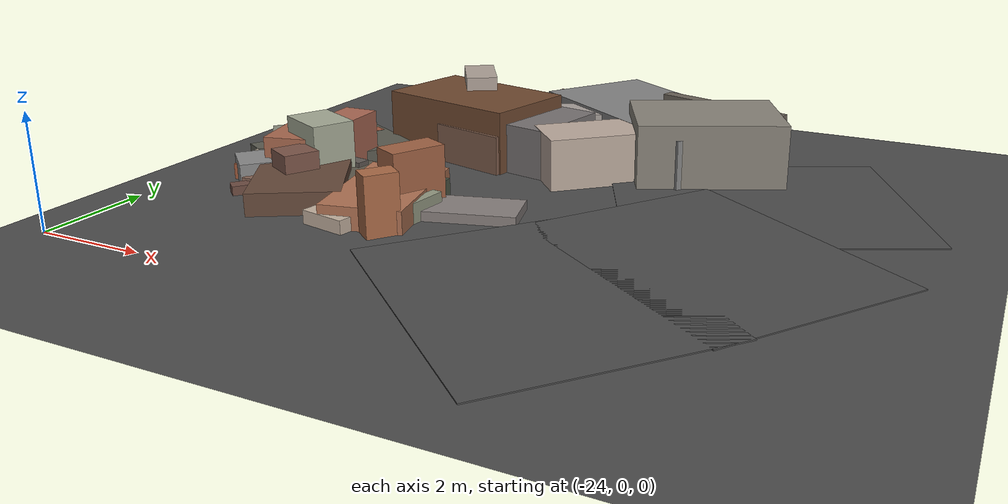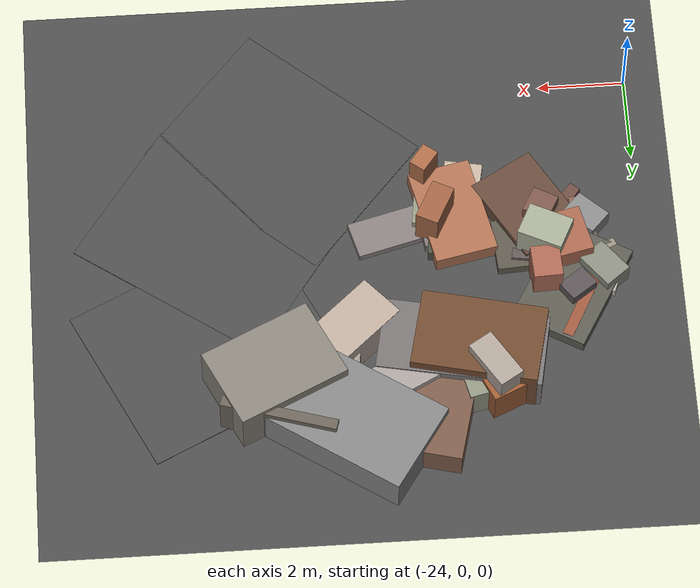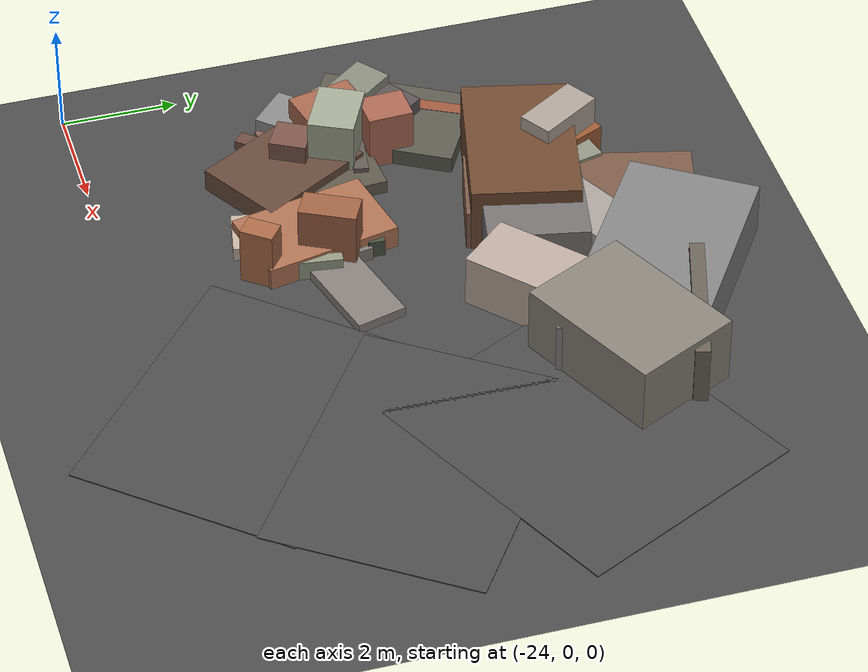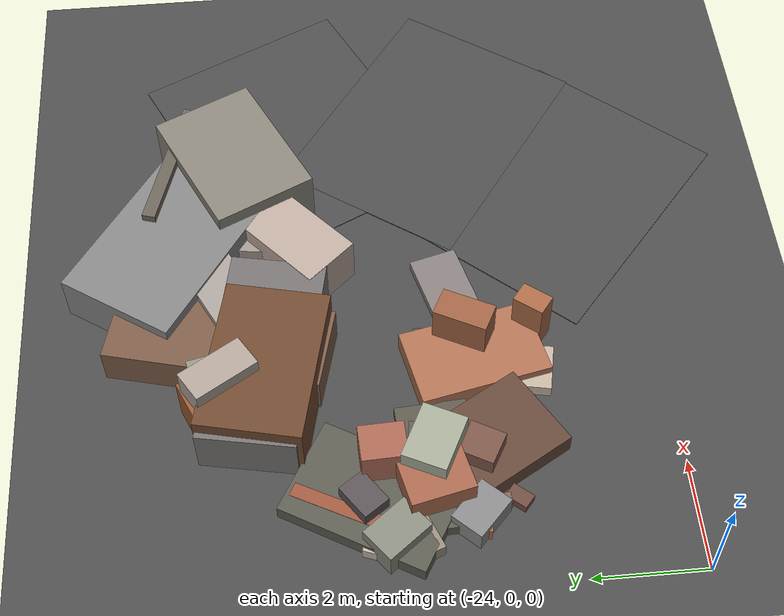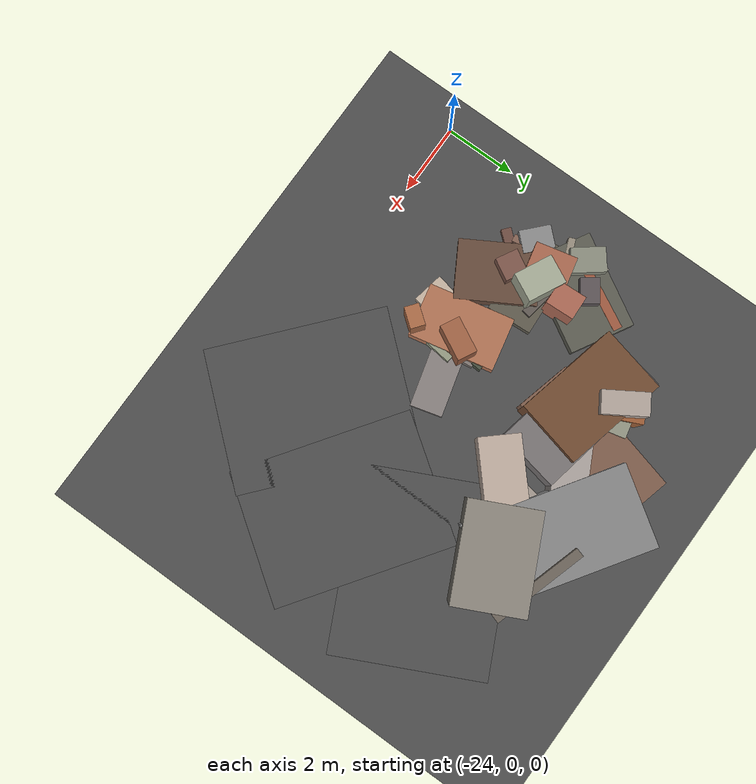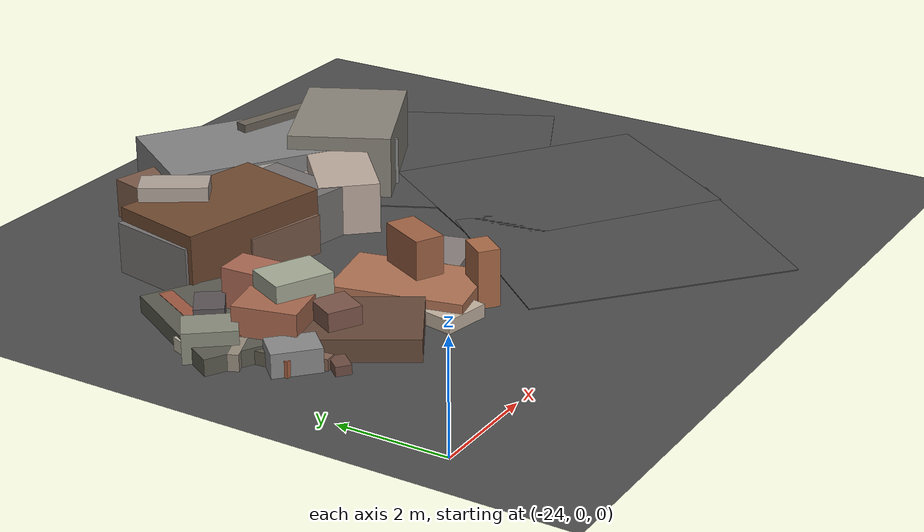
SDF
<sdf version="1.6">
 <world name="navitas_arena">
  <model name="ground_plane">
   <static>true</static>
   <link name="link">
    <collision name="collision">
     <geometry><plane><normal>0 0 1</normal><size>400 400</size></plane></geometry>
     <surface><friction><ode><mu>0.800</mu><mu2>0.800</mu2></ode></friction></surface>
    </collision>
    <visual name="visual">
     <cast_shadows>false</cast_shadows>
     <geometry><plane><normal>0 0 1</normal><size>400 400</size></plane></geometry>
     <material>
      <specular>0.04 0.04 0.04 1</specular>
      <script>
       <uri>file://media/materials/scripts/navitas_asphalt.material</uri>
       <name>Navitas/RealArenaAsphalt</name>
      </script>
     </material>
    </visual>
   </link>
  </model>
  <model name="road_orta_1_11">
   <static>true</static>
   <pose>-15.885 1.333 0.040 0 0 0.863</pose>
   <link name="link">
    <collision name="col"><geometry><box><size>3.971 5.000 0.020</size></box></geometry></collision>
    <visual name="vis">
     <geometry><box><size>3.971 5.000 0.020</size></box></geometry>
     <material>
      <specular>0.04 0.04 0.04 1</specular>
      <script>
       <uri>file://media/materials/scripts/navitas_asphalt.material</uri>
       <name>Navitas/RealArenaAsphalt</name>
      </script>
     </material>
    </visual>
   </link>
  </model>
  <model name="road_orta_1_12">
   <static>true</static>
   <pose>-14.071 3.667 0.040 0 0 0.961</pose>
   <link name="link">
    <collision name="col"><geometry><box><size>3.747 5.000 0.020</size></box></geometry></collision>
    <visual name="vis">
     <geometry><box><size>3.747 5.000 0.020</size></box></geometry>
     <material>
      <specular>0.04 0.04 0.04 1</specular>
      <script>
       <uri>file://media/materials/scripts/navitas_asphalt.material</uri>
       <name>Navitas/RealArenaAsphalt</name>
      </script>
     </material>
    </visual>
   </link>
  </model>
  <model name="road_orta_1_13">
   <static>true</static>
   <pose>-13.981 6.321 0.040 0 0 2.025</pose>
   <link name="link">
    <collision name="col"><geometry><box><size>4.211 5.000 0.020</size></box></geometry></collision>
    <visual name="vis">
     <geometry><box><size>4.211 5.000 0.020</size></box></geometry>
     <material>
      <specular>0.04 0.04 0.04 1</specular>
      <script>
       <uri>file://media/materials/scripts/navitas_asphalt.material</uri>
       <name>Navitas/RealArenaAsphalt</name>
      </script>
     </material>
    </visual>
   </link>
  </model>
  <model name="blk_orta_1_1_3">
   <static>true</static>
   <pose>-16.607 8.062 0.000 0 0 0</pose>
   <link name="link">
    <collision name="col_0">
     <pose>1.172 0.656 0.552 0.000 0.000 2.850</pose>
     <geometry><box><size>2.671 0.250 1.104</size></box></geometry>
    </collision>
    <visual name="vis_0">
     <pose>1.172 0.656 0.552 0.000 0.000 2.850</pose>
     <geometry><box><size>2.671 0.250 1.104</size></box></geometry>
     <material>
      <ambient>0.39 0.36 0.33 1</ambient>
      <diffuse>0.42 0.39 0.35 1</diffuse>
      <specular>0.05 0.05 0.045 1</specular>
     </material>
    </visual>
    <collision name="col_1">
     <pose>-0.138 0.423 0.475 0.000 0.000 2.554</pose>
     <geometry><box><size>4.443 2.253 0.949</size></box></geometry>
    </collision>
    <visual name="vis_1">
     <pose>-0.138 0.423 0.475 0.000 0.000 2.554</pose>
     <geometry><box><size>4.443 2.253 0.949</size></box></geometry>
     <material>
      <ambient>0.48 0.49 0.48 1</ambient>
      <diffuse>0.52 0.52 0.52 1</diffuse>
      <specular>0.05 0.05 0.045 1</specular>
     </material>
    </visual>
    <collision name="col_2">
     <pose>-0.430 0.009 0.312 0.000 0.000 1.437</pose>
     <geometry><box><size>2.510 0.363 0.624</size></box></geometry>
    </collision>
    <visual name="vis_2">
     <pose>-0.430 0.009 0.312 0.000 0.000 1.437</pose>
     <geometry><box><size>2.510 0.363 0.624</size></box></geometry>
     <material>
      <ambient>0.58 0.55 0.51 1</ambient>
      <diffuse>0.63 0.59 0.55 1</diffuse>
      <specular>0.05 0.05 0.045 1</specular>
     </material>
    </visual>
    <collision name="col_3">
     <pose>-1.234 -0.040 0.448 0.000 0.000 0.478</pose>
     <geometry><box><size>3.831 0.915 0.897</size></box></geometry>
    </collision>
    <visual name="vis_3">
     <pose>-1.234 -0.040 0.448 0.000 0.000 0.478</pose>
     <geometry><box><size>3.831 0.915 0.897</size></box></geometry>
     <material>
      <ambient>0.62 0.58 0.57 1</ambient>
      <diffuse>0.66 0.63 0.61 1</diffuse>
      <specular>0.05 0.05 0.045 1</specular>
     </material>
    </visual>
    <collision name="col_4">
     <pose>-0.088 -1.145 0.473 0.000 0.000 0.731</pose>
     <geometry><box><size>3.311 1.118 0.946</size></box></geometry>
    </collision>
    <visual name="vis_4">
     <pose>-0.088 -1.145 0.473 0.000 0.000 0.731</pose>
     <geometry><box><size>3.311 1.118 0.946</size></box></geometry>
     <material>
      <ambient>0.69 0.62 0.57 1</ambient>
      <diffuse>0.74 0.67 0.62 1</diffuse>
      <specular>0.05 0.05 0.045 1</specular>
     </material>
    </visual>
    <collision name="col_5">
     <pose>1.211 -0.546 0.608 0.000 0.000 0.451</pose>
     <geometry><box><size>2.683 1.945 1.215</size></box></geometry>
    </collision>
    <visual name="vis_5">
     <pose>1.211 -0.546 0.608 0.000 0.000 0.451</pose>
     <geometry><box><size>2.683 1.945 1.215</size></box></geometry>
     <material>
      <ambient>0.50 0.48 0.44 1</ambient>
      <diffuse>0.54 0.52 0.48 1</diffuse>
      <specular>0.05 0.05 0.045 1</specular>
     </material>
    </visual>
   </link>
  </model>
  <model name="blk_orta_1_1_4">
   <static>true</static>
   <pose>-19.697 7.496 0.000 0 0 0</pose>
   <link name="link">
    <collision name="col_0">
     <pose>-0.177 0.539 0.396 0.000 0.000 1.803</pose>
     <geometry><box><size>0.762 0.466 0.793</size></box></geometry>
    </collision>
    <visual name="vis_0">
     <pose>-0.177 0.539 0.396 0.000 0.000 1.803</pose>
     <geometry><box><size>0.762 0.466 0.793</size></box></geometry>
     <material>
      <ambient>0.53 0.53 0.47 1</ambient>
      <diffuse>0.57 0.58 0.51 1</diffuse>
      <specular>0.05 0.05 0.045 1</specular>
     </material>
    </visual>
    <collision name="col_1">
     <pose>-0.957 0.230 0.468 0.000 0.000 0.219</pose>
     <geometry><box><size>0.528 0.535 0.935</size></box></geometry>
    </collision>
    <visual name="vis_1">
     <pose>-0.957 0.230 0.468 0.000 0.000 0.219</pose>
     <geometry><box><size>0.528 0.535 0.935</size></box></geometry>
     <material>
      <ambient>0.35 0.31 0.30 1</ambient>
      <diffuse>0.38 0.33 0.33 1</diffuse>
      <specular>0.05 0.05 0.045 1</specular>
     </material>
    </visual>
    <collision name="col_2">
     <pose>1.021 -0.043 0.358 0.000 0.000 0.556</pose>
     <geometry><box><size>1.240 0.692 0.716</size></box></geometry>
    </collision>
    <visual name="vis_2">
     <pose>1.021 -0.043 0.358 0.000 0.000 0.556</pose>
     <geometry><box><size>1.240 0.692 0.716</size></box></geometry>
     <material>
      <ambient>0.60 0.34 0.26 1</ambient>
      <diffuse>0.65 0.37 0.28 1</diffuse>
      <specular>0.05 0.05 0.045 1</specular>
     </material>
    </visual>
    <collision name="col_3">
     <pose>0.541 0.379 0.368 0.000 0.000 1.324</pose>
     <geometry><box><size>3.881 1.540 0.735</size></box></geometry>
    </collision>
    <visual name="vis_3">
     <pose>0.541 0.379 0.368 0.000 0.000 1.324</pose>
     <geometry><box><size>3.881 1.540 0.735</size></box></geometry>
     <material>
      <ambient>0.46 0.34 0.27 1</ambient>
      <diffuse>0.49 0.36 0.29 1</diffuse>
      <specular>0.05 0.05 0.045 1</specular>
     </material>
    </visual>
    <collision name="col_4">
     <pose>-0.720 0.312 0.460 0.000 0.000 1.998</pose>
     <geometry><box><size>1.347 0.936 0.919</size></box></geometry>
    </collision>
    <visual name="vis_4">
     <pose>-0.720 0.312 0.460 0.000 0.000 1.998</pose>
     <geometry><box><size>1.347 0.936 0.919</size></box></geometry>
     <material>
      <ambient>0.57 0.33 0.20 1</ambient>
      <diffuse>0.61 0.36 0.21 1</diffuse>
      <specular>0.05 0.05 0.045 1</specular>
     </material>
    </visual>
    <collision name="col_5">
     <pose>-0.637 0.354 0.724 0.000 0.000 2.132</pose>
     <geometry><box><size>1.222 0.611 1.448</size></box></geometry>
    </collision>
    <visual name="vis_5">
     <pose>-0.637 0.354 0.724 0.000 0.000 2.132</pose>
     <geometry><box><size>1.222 0.611 1.448</size></box></geometry>
     <material>
      <ambient>0.64 0.59 0.55 1</ambient>
      <diffuse>0.69 0.64 0.60 1</diffuse>
      <specular>0.05 0.05 0.045 1</specular>
     </material>
    </visual>
    <collision name="col_6">
     <pose>0.677 0.108 0.330 0.000 0.000 -0.182</pose>
     <geometry><box><size>0.630 0.480 0.661</size></box></geometry>
    </collision>
    <visual name="vis_6">
     <pose>0.677 0.108 0.330 0.000 0.000 -0.182</pose>
     <geometry><box><size>0.630 0.480 0.661</size></box></geometry>
     <material>
      <ambient>0.56 0.55 0.51 1</ambient>
      <diffuse>0.60 0.60 0.55 1</diffuse>
      <specular>0.05 0.05 0.045 1</specular>
     </material>
    </visual>
    <collision name="col_7">
     <pose>0.037 -0.384 0.468 0.000 0.000 -0.193</pose>
     <geometry><box><size>3.755 1.735 0.936</size></box></geometry>
    </collision>
    <visual name="vis_7">
     <pose>0.037 -0.384 0.468 0.000 0.000 -0.193</pose>
     <geometry><box><size>3.755 1.735 0.936</size></box></geometry>
     <material>
      <ambient>0.43 0.42 0.41 1</ambient>
      <diffuse>0.47 0.45 0.45 1</diffuse>
      <specular>0.05 0.05 0.045 1</specular>
     </material>
    </visual>
    <collision name="col_8">
     <pose>-0.333 -0.396 0.594 0.000 0.000 -0.225</pose>
     <geometry><box><size>2.877 1.860 1.189</size></box></geometry>
    </collision>
    <visual name="vis_8">
     <pose>-0.333 -0.396 0.594 0.000 0.000 -0.225</pose>
     <geometry><box><size>2.877 1.860 1.189</size></box></geometry>
     <material>
      <ambient>0.40 0.27 0.18 1</ambient>
      <diffuse>0.44 0.29 0.19 1</diffuse>
      <specular>0.05 0.05 0.045 1</specular>
     </material>
    </visual>
   </link>
  </model>
  <model name="deb_orta_26">
   <static>true</static>
   <pose>-19.552 3.379 0.000 0 0 0</pose>
   <link name="link">
    <collision name="col_0">
     <pose>-0.171 -0.294 0.160 0.000 0.000 2.521</pose>
     <geometry><box><size>0.510 0.457 0.320</size></box></geometry>
    </collision>
    <visual name="vis_0">
     <pose>-0.171 -0.294 0.160 0.000 0.000 2.521</pose>
     <geometry><box><size>0.510 0.457 0.320</size></box></geometry>
     <material>
      <ambient>0.48 0.36 0.25 1</ambient>
      <diffuse>0.52 0.39 0.28 1</diffuse>
      <specular>0.05 0.05 0.045 1</specular>
     </material>
    </visual>
    <collision name="col_1">
     <pose>0.264 0.184 0.559 0.000 0.000 2.671</pose>
     <geometry><box><size>0.539 0.990 1.118</size></box></geometry>
    </collision>
    <visual name="vis_1">
     <pose>0.264 0.184 0.559 0.000 0.000 2.671</pose>
     <geometry><box><size>0.539 0.990 1.118</size></box></geometry>
     <material>
      <ambient>0.59 0.36 0.25 1</ambient>
      <diffuse>0.63 0.39 0.27 1</diffuse>
      <specular>0.05 0.05 0.045 1</specular>
     </material>
    </visual>
    <collision name="col_2">
     <pose>0.748 0.171 0.088 0.000 0.000 3.406</pose>
     <geometry><box><size>2.915 0.887 0.176</size></box></geometry>
    </collision>
    <visual name="vis_2">
     <pose>0.748 0.171 0.088 0.000 0.000 3.406</pose>
     <geometry><box><size>2.915 0.887 0.176</size></box></geometry>
     <material>
      <ambient>0.49 0.46 0.46 1</ambient>
      <diffuse>0.53 0.50 0.49 1</diffuse>
      <specular>0.05 0.05 0.045 1</specular>
     </material>
    </visual>
    <collision name="col_3">
     <pose>-0.159 0.024 0.204 0.000 0.000 1.784</pose>
     <geometry><box><size>2.384 1.461 0.408</size></box></geometry>
    </collision>
    <visual name="vis_3">
     <pose>-0.159 0.024 0.204 0.000 0.000 1.784</pose>
     <geometry><box><size>2.384 1.461 0.408</size></box></geometry>
     <material>
      <ambient>0.64 0.42 0.30 1</ambient>
      <diffuse>0.69 0.45 0.33 1</diffuse>
      <specular>0.05 0.05 0.045 1</specular>
     </material>
    </visual>
    <collision name="col_4">
     <pose>0.355 0.574 0.120 0.000 0.000 1.708</pose>
     <geometry><box><size>0.504 0.396 0.240</size></box></geometry>
    </collision>
    <visual name="vis_4">
     <pose>0.355 0.574 0.120 0.000 0.000 1.708</pose>
     <geometry><box><size>0.504 0.396 0.240</size></box></geometry>
     <material>
      <ambient>0.46 0.43 0.41 1</ambient>
      <diffuse>0.50 0.47 0.45 1</diffuse>
      <specular>0.05 0.05 0.045 1</specular>
     </material>
    </visual>
    <collision name="col_5">
     <pose>-0.327 0.658 0.110 0.000 0.000 2.406</pose>
     <geometry><box><size>0.272 0.455 0.220</size></box></geometry>
    </collision>
    <visual name="vis_5">
     <pose>-0.327 0.658 0.110 0.000 0.000 2.406</pose>
     <geometry><box><size>0.272 0.455 0.220</size></box></geometry>
     <material>
      <ambient>0.49 0.47 0.44 1</ambient>
      <diffuse>0.53 0.51 0.48 1</diffuse>
      <specular>0.05 0.05 0.045 1</specular>
     </material>
    </visual>
    <collision name="col_6">
     <pose>0.338 0.938 0.156 0.000 0.000 3.084</pose>
     <geometry><box><size>0.255 0.285 0.312</size></box></geometry>
    </collision>
    <visual name="vis_6">
     <pose>0.338 0.938 0.156 0.000 0.000 3.084</pose>
     <geometry><box><size>0.255 0.285 0.312</size></box></geometry>
     <material>
      <ambient>0.27 0.30 0.24 1</ambient>
      <diffuse>0.29 0.32 0.26 1</diffuse>
      <specular>0.05 0.05 0.045 1</specular>
     </material>
    </visual>
   </link>
  </model>
  <model name="deb_orta_87">
   <static>true</static>
   <pose>-22.765 5.282 0.000 0 0 0</pose>
   <link name="link">
    <collision name="col_0">
     <pose>0.083 -0.605 0.148 0.000 0.000 0.393</pose>
     <geometry><box><size>1.527 0.190 0.297</size></box></geometry>
    </collision>
    <visual name="vis_0">
     <pose>0.083 -0.605 0.148 0.000 0.000 0.393</pose>
     <geometry><box><size>1.527 0.190 0.297</size></box></geometry>
     <material>
      <ambient>0.54 0.51 0.46 1</ambient>
      <diffuse>0.59 0.55 0.49 1</diffuse>
      <specular>0.05 0.05 0.045 1</specular>
     </material>
    </visual>
    <collision name="col_1">
     <pose>0.450 0.118 0.148 0.000 0.000 1.052</pose>
     <geometry><box><size>2.708 1.799 0.297</size></box></geometry>
    </collision>
    <visual name="vis_1">
     <pose>0.450 0.118 0.148 0.000 0.000 1.052</pose>
     <geometry><box><size>2.708 1.799 0.297</size></box></geometry>
     <material>
      <ambient>0.33 0.33 0.30 1</ambient>
      <diffuse>0.36 0.36 0.32 1</diffuse>
      <specular>0.05 0.05 0.045 1</specular>
     </material>
    </visual>
    <collision name="col_2">
     <pose>0.350 0.284 0.283 0.000 0.000 0.619</pose>
     <geometry><box><size>0.695 0.516 0.565</size></box></geometry>
    </collision>
    <visual name="vis_2">
     <pose>0.350 0.284 0.283 0.000 0.000 0.619</pose>
     <geometry><box><size>0.695 0.516 0.565</size></box></geometry>
     <material>
      <ambient>0.34 0.30 0.31 1</ambient>
      <diffuse>0.36 0.33 0.34 1</diffuse>
      <specular>0.05 0.05 0.045 1</specular>
     </material>
    </visual>
    <collision name="col_3">
     <pose>0.185 0.518 0.151 0.000 0.000 1.090</pose>
     <geometry><box><size>2.133 0.249 0.303</size></box></geometry>
    </collision>
    <visual name="vis_3">
     <pose>0.185 0.518 0.151 0.000 0.000 1.090</pose>
     <geometry><box><size>2.133 0.249 0.303</size></box></geometry>
     <material>
      <ambient>0.58 0.32 0.23 1</ambient>
      <diffuse>0.62 0.35 0.25 1</diffuse>
      <specular>0.05 0.05 0.045 1</specular>
     </material>
    </visual>
    <collision name="col_4">
     <pose>-0.487 0.173 0.116 0.000 0.000 -0.356</pose>
     <geometry><box><size>0.184 0.373 0.233</size></box></geometry>
    </collision>
    <visual name="vis_4">
     <pose>-0.487 0.173 0.116 0.000 0.000 -0.356</pose>
     <geometry><box><size>0.184 0.373 0.233</size></box></geometry>
     <material>
      <ambient>0.70 0.66 0.61 1</ambient>
      <diffuse>0.75 0.72 0.66 1</diffuse>
      <specular>0.05 0.05 0.045 1</specular>
     </material>
    </visual>
    <collision name="col_5">
     <pose>-0.308 -0.213 0.273 0.000 0.000 0.665</pose>
     <geometry><box><size>0.678 0.928 0.546</size></box></geometry>
    </collision>
    <visual name="vis_5">
     <pose>-0.308 -0.213 0.273 0.000 0.000 0.665</pose>
     <geometry><box><size>0.678 0.928 0.546</size></box></geometry>
     <material>
      <ambient>0.50 0.51 0.46 1</ambient>
      <diffuse>0.54 0.55 0.49 1</diffuse>
      <specular>0.05 0.05 0.045 1</specular>
     </material>
    </visual>
   </link>
  </model>
  <model name="deb_orta_148">
   <static>true</static>
   <pose>-19.533 2.851 0.000 0 0 0</pose>
   <link name="link">
    <collision name="col_0">
     <pose>-0.392 -0.016 0.122 0.000 0.000 1.381</pose>
     <geometry><box><size>1.586 0.878 0.244</size></box></geometry>
    </collision>
    <visual name="vis_0">
     <pose>-0.392 -0.016 0.122 0.000 0.000 1.381</pose>
     <geometry><box><size>1.586 0.878 0.244</size></box></geometry>
     <material>
      <ambient>0.71 0.65 0.58 1</ambient>
      <diffuse>0.77 0.70 0.63 1</diffuse>
      <specular>0.05 0.05 0.045 1</specular>
     </material>
    </visual>
    <collision name="col_1">
     <pose>0.607 0.240 0.180 0.000 0.000 1.444</pose>
     <geometry><box><size>1.139 0.190 0.360</size></box></geometry>
    </collision>
    <visual name="vis_1">
     <pose>0.607 0.240 0.180 0.000 0.000 1.444</pose>
     <geometry><box><size>1.139 0.190 0.360</size></box></geometry>
     <material>
      <ambient>0.54 0.55 0.48 1</ambient>
      <diffuse>0.58 0.60 0.51 1</diffuse>
      <specular>0.05 0.05 0.045 1</specular>
     </material>
    </visual>
    <collision name="col_2">
     <pose>0.416 -0.528 0.526 0.000 0.000 0.918</pose>
     <geometry><box><size>0.584 0.398 1.052</size></box></geometry>
    </collision>
    <visual name="vis_2">
     <pose>0.416 -0.528 0.526 0.000 0.000 0.918</pose>
     <geometry><box><size>0.584 0.398 1.052</size></box></geometry>
     <material>
      <ambient>0.62 0.39 0.26 1</ambient>
      <diffuse>0.67 0.42 0.28 1</diffuse>
      <specular>0.05 0.05 0.045 1</specular>
     </material>
    </visual>
    <collision name="col_3">
     <pose>-0.067 0.275 0.081 0.000 0.000 0.196</pose>
     <geometry><box><size>0.475 0.450 0.162</size></box></geometry>
    </collision>
    <visual name="vis_3">
     <pose>-0.067 0.275 0.081 0.000 0.000 0.196</pose>
     <geometry><box><size>0.475 0.450 0.162</size></box></geometry>
     <material>
      <ambient>0.65 0.38 0.29 1</ambient>
      <diffuse>0.70 0.41 0.31 1</diffuse>
      <specular>0.05 0.05 0.045 1</specular>
     </material>
    </visual>
    <collision name="col_4">
     <pose>0.403 -0.251 0.145 0.000 0.000 0.025</pose>
     <geometry><box><size>0.366 0.320 0.289</size></box></geometry>
    </collision>
    <visual name="vis_4">
     <pose>0.403 -0.251 0.145 0.000 0.000 0.025</pose>
     <geometry><box><size>0.366 0.320 0.289</size></box></geometry>
     <material>
      <ambient>0.31 0.35 0.33 1</ambient>
      <diffuse>0.34 0.38 0.35 1</diffuse>
      <specular>0.05 0.05 0.045 1</specular>
     </material>
    </visual>
   </link>
  </model>
  <model name="deb_orta_200">
   <static>true</static>
   <pose>-21.501 3.669 0.000 0 0 0</pose>
   <link name="link">
    <collision name="col_0">
     <pose>0.049 -0.343 0.204 0.000 0.000 2.102</pose>
     <geometry><box><size>2.205 1.613 0.409</size></box></geometry>
    </collision>
    <visual name="vis_0">
     <pose>0.049 -0.343 0.204 0.000 0.000 2.102</pose>
     <geometry><box><size>2.205 1.613 0.409</size></box></geometry>
     <material>
      <ambient>0.37 0.27 0.21 1</ambient>
      <diffuse>0.40 0.29 0.23 1</diffuse>
      <specular>0.05 0.05 0.045 1</specular>
     </material>
    </visual>
    <collision name="col_1">
     <pose>0.254 -0.202 0.090 0.000 0.000 1.962</pose>
     <geometry><box><size>1.750 0.170 0.180</size></box></geometry>
    </collision>
    <visual name="vis_1">
     <pose>0.254 -0.202 0.090 0.000 0.000 1.962</pose>
     <geometry><box><size>1.750 0.170 0.180</size></box></geometry>
     <material>
      <ambient>0.59 0.33 0.22 1</ambient>
      <diffuse>0.63 0.36 0.24 1</diffuse>
      <specular>0.05 0.05 0.045 1</specular>
     </material>
    </visual>
    <collision name="col_2">
     <pose>-0.256 0.669 0.562 0.000 0.000 2.685</pose>
     <geometry><box><size>1.063 0.803 1.123</size></box></geometry>
    </collision>
    <visual name="vis_2">
     <pose>-0.256 0.669 0.562 0.000 0.000 2.685</pose>
     <geometry><box><size>1.063 0.803 1.123</size></box></geometry>
     <material>
      <ambient>0.60 0.62 0.54 1</ambient>
      <diffuse>0.65 0.67 0.59 1</diffuse>
      <specular>0.05 0.05 0.045 1</specular>
     </material>
    </visual>
    <collision name="col_3">
     <pose>-0.222 -0.139 0.371 0.000 0.000 1.068</pose>
     <geometry><box><size>0.645 0.620 0.742</size></box></geometry>
    </collision>
    <visual name="vis_3">
     <pose>-0.222 -0.139 0.371 0.000 0.000 1.068</pose>
     <geometry><box><size>0.645 0.620 0.742</size></box></geometry>
     <material>
      <ambient>0.46 0.31 0.27 1</ambient>
      <diffuse>0.49 0.34 0.29 1</diffuse>
      <specular>0.05 0.05 0.045 1</specular>
     </material>
    </visual>
    <collision name="col_4">
     <pose>-0.663 -0.161 0.146 0.000 0.000 3.052</pose>
     <geometry><box><size>1.967 0.181 0.292</size></box></geometry>
    </collision>
    <visual name="vis_4">
     <pose>-0.663 -0.161 0.146 0.000 0.000 3.052</pose>
     <geometry><box><size>1.967 0.181 0.292</size></box></geometry>
     <material>
      <ambient>0.64 0.37 0.25 1</ambient>
      <diffuse>0.69 0.40 0.27 1</diffuse>
      <specular>0.05 0.05 0.045 1</specular>
     </material>
    </visual>
   </link>
  </model>
  <model name="deb_orta_221">
   <static>true</static>
   <pose>-22.121 4.682 0.000 0 0 0</pose>
   <link name="link">
    <collision name="col_0">
     <pose>0.511 -0.023 0.166 0.000 0.000 -0.152</pose>
     <geometry><box><size>1.241 0.255 0.331</size></box></geometry>
    </collision>
    <visual name="vis_0">
     <pose>0.511 -0.023 0.166 0.000 0.000 -0.152</pose>
     <geometry><box><size>1.241 0.255 0.331</size></box></geometry>
     <material>
      <ambient>0.35 0.33 0.30 1</ambient>
      <diffuse>0.38 0.35 0.33 1</diffuse>
      <specular>0.05 0.05 0.045 1</specular>
     </material>
    </visual>
    <collision name="col_1">
     <pose>0.195 0.427 0.114 0.000 0.000 1.469</pose>
     <geometry><box><size>1.325 0.297 0.227</size></box></geometry>
    </collision>
    <visual name="vis_1">
     <pose>0.195 0.427 0.114 0.000 0.000 1.469</pose>
     <geometry><box><size>1.325 0.297 0.227</size></box></geometry>
     <material>
      <ambient>0.53 0.52 0.46 1</ambient>
      <diffuse>0.57 0.56 0.50 1</diffuse>
      <specular>0.05 0.05 0.045 1</specular>
     </material>
    </visual>
    <collision name="col_2">
     <pose>0.310 -0.466 0.122 0.000 0.000 0.065</pose>
     <geometry><box><size>2.397 1.270 0.244</size></box></geometry>
    </collision>
    <visual name="vis_2">
     <pose>0.310 -0.466 0.122 0.000 0.000 0.065</pose>
     <geometry><box><size>2.397 1.270 0.244</size></box></geometry>
     <material>
      <ambient>0.35 0.32 0.28 1</ambient>
      <diffuse>0.37 0.35 0.30 1</diffuse>
      <specular>0.05 0.05 0.045 1</specular>
     </material>
    </visual>
    <collision name="col_3">
     <pose>0.409 0.512 0.508 0.000 0.000 1.616</pose>
     <geometry><box><size>0.791 0.664 1.017</size></box></geometry>
    </collision>
    <visual name="vis_3">
     <pose>0.409 0.512 0.508 0.000 0.000 1.616</pose>
     <geometry><box><size>0.791 0.664 1.017</size></box></geometry>
     <material>
      <ambient>0.62 0.38 0.30 1</ambient>
      <diffuse>0.67 0.41 0.33 1</diffuse>
      <specular>0.05 0.05 0.045 1</specular>
     </material>
    </visual>
    <collision name="col_4">
     <pose>0.023 -0.644 0.175 0.000 0.000 -0.624</pose>
     <geometry><box><size>0.393 0.298 0.349</size></box></geometry>
    </collision>
    <visual name="vis_4">
     <pose>0.023 -0.644 0.175 0.000 0.000 -0.624</pose>
     <geometry><box><size>0.393 0.298 0.349</size></box></geometry>
     <material>
      <ambient>0.48 0.34 0.24 1</ambient>
      <diffuse>0.52 0.36 0.25 1</diffuse>
      <specular>0.05 0.05 0.045 1</specular>
     </material>
    </visual>
   </link>
  </model>
  <model name="deb_orta_293">
   <static>true</static>
   <pose>-22.279 3.657 0.000 0 0 0</pose>
   <link name="link">
    <collision name="col_0">
     <pose>-0.200 -0.698 0.086 0.000 0.000 2.443</pose>
     <geometry><box><size>0.277 0.414 0.171</size></box></geometry>
    </collision>
    <visual name="vis_0">
     <pose>-0.200 -0.698 0.086 0.000 0.000 2.443</pose>
     <geometry><box><size>0.277 0.414 0.171</size></box></geometry>
     <material>
      <ambient>0.40 0.28 0.24 1</ambient>
      <diffuse>0.43 0.30 0.26 1</diffuse>
      <specular>0.05 0.05 0.045 1</specular>
     </material>
    </visual>
    <collision name="col_1">
     <pose>-0.262 -0.323 0.106 0.000 0.000 1.671</pose>
     <geometry><box><size>0.455 0.207 0.212</size></box></geometry>
    </collision>
    <visual name="vis_1">
     <pose>-0.262 -0.323 0.106 0.000 0.000 1.671</pose>
     <geometry><box><size>0.455 0.207 0.212</size></box></geometry>
     <material>
      <ambient>0.48 0.36 0.31 1</ambient>
      <diffuse>0.52 0.39 0.33 1</diffuse>
      <specular>0.05 0.05 0.045 1</specular>
     </material>
    </visual>
    <collision name="col_2">
     <pose>0.022 0.710 0.410 0.000 0.000 1.800</pose>
     <geometry><box><size>1.135 0.929 0.820</size></box></geometry>
    </collision>
    <visual name="vis_2">
     <pose>0.022 0.710 0.410 0.000 0.000 1.800</pose>
     <geometry><box><size>1.135 0.929 0.820</size></box></geometry>
     <material>
      <ambient>0.62 0.38 0.29 1</ambient>
      <diffuse>0.66 0.41 0.31 1</diffuse>
      <specular>0.05 0.05 0.045 1</specular>
     </material>
    </visual>
    <collision name="col_3">
     <pose>-0.496 -0.006 0.214 0.000 0.000 0.822</pose>
     <geometry><box><size>0.625 0.860 0.429</size></box></geometry>
    </collision>
    <visual name="vis_3">
     <pose>-0.496 -0.006 0.214 0.000 0.000 0.822</pose>
     <geometry><box><size>0.625 0.860 0.429</size></box></geometry>
     <material>
      <ambient>0.50 0.50 0.50 1</ambient>
      <diffuse>0.54 0.54 0.54 1</diffuse>
      <specular>0.05 0.05 0.045 1</specular>
     </material>
    </visual>
    <collision name="col_4">
     <pose>0.328 0.140 0.092 0.000 0.000 2.875</pose>
     <geometry><box><size>0.400 0.288 0.183</size></box></geometry>
    </collision>
    <visual name="vis_4">
     <pose>0.328 0.140 0.092 0.000 0.000 2.875</pose>
     <geometry><box><size>0.400 0.288 0.183</size></box></geometry>
     <material>
      <ambient>0.73 0.66 0.57 1</ambient>
      <diffuse>0.79 0.71 0.61 1</diffuse>
      <specular>0.05 0.05 0.045 1</specular>
     </material>
    </visual>
    <collision name="col_5">
     <pose>-0.196 0.740 0.160 0.000 0.000 2.294</pose>
     <geometry><box><size>1.954 0.146 0.319</size></box></geometry>
    </collision>
    <visual name="vis_5">
     <pose>-0.196 0.740 0.160 0.000 0.000 2.294</pose>
     <geometry><box><size>1.954 0.146 0.319</size></box></geometry>
     <material>
      <ambient>0.59 0.36 0.26 1</ambient>
      <diffuse>0.64 0.39 0.28 1</diffuse>
      <specular>0.05 0.05 0.045 1</specular>
     </material>
    </visual>
   </link>
  </model>
 </world>
</sdf>
